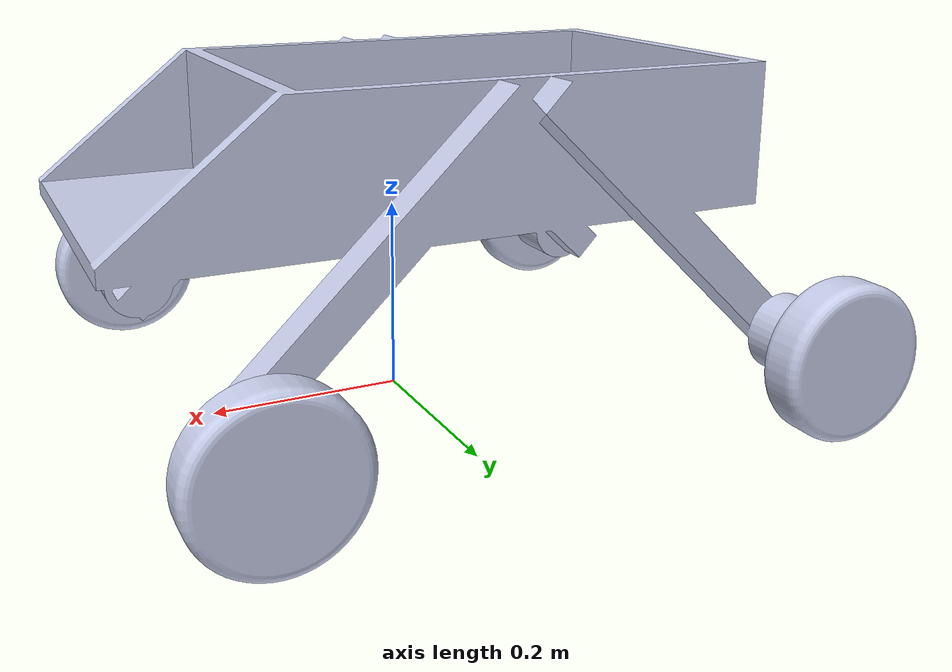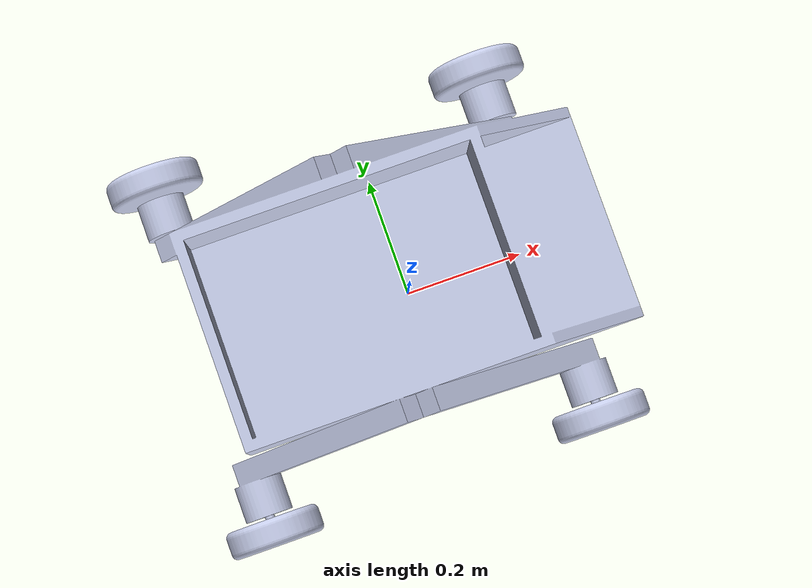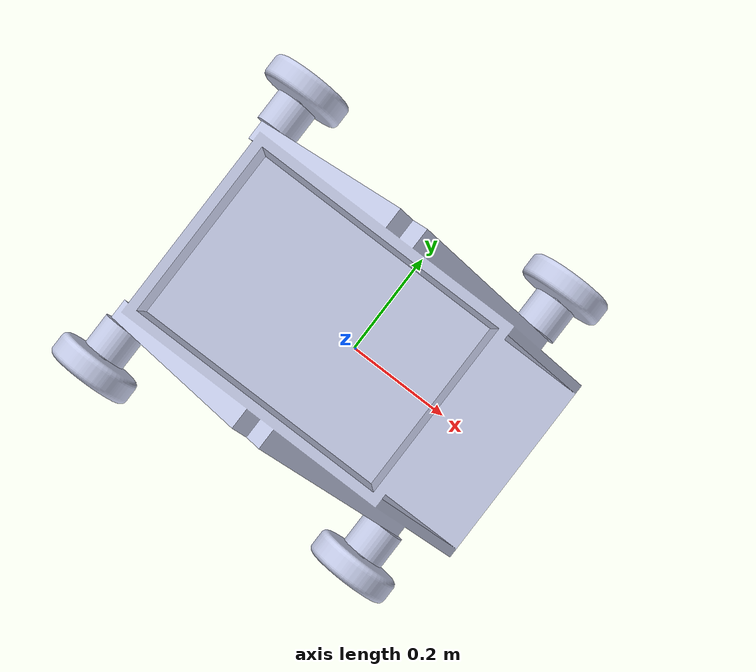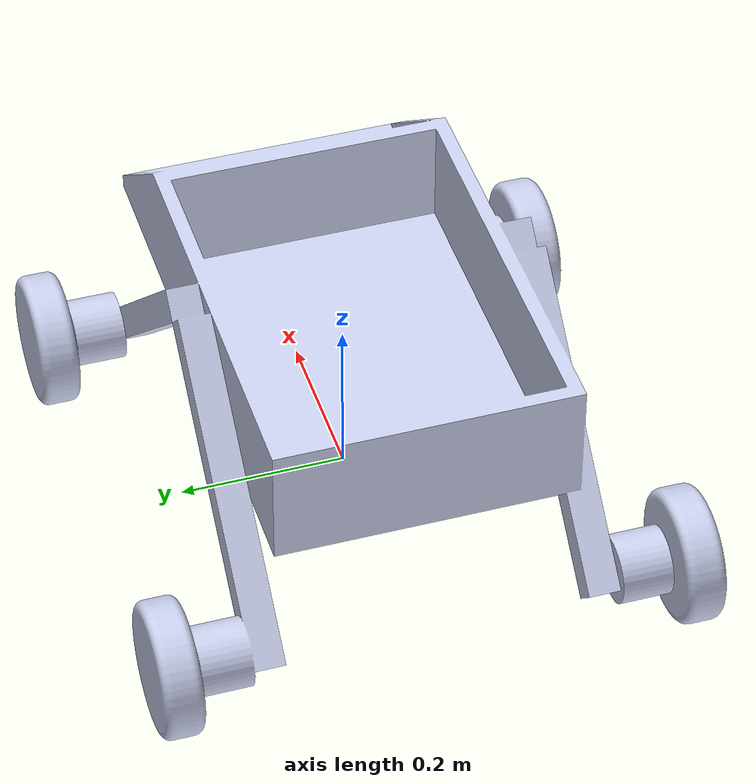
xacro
<?xml version="1.0" encoding="utf-8"?>
<robot name="rover_description" xmlns:xacro="http://wiki.ros.org/xacro">

  <xacro:arg name="is_ignition" default="true" />
  <xacro:arg name="use_sim_time" default="true" />

  <!-- Include the gazebo functionality -->
  <xacro:include filename="$(find rover_description)/urdf/rover_gazebo.xacro" />

  <link name="base_footprint"/>

  <joint name="base_joint" type="fixed">
    <origin xyz="0 0 0.20504" rpy="0 0 0"/>
    <parent link="base_footprint"/>
    <child link="base_link"/>
  </joint>

  <link
    name="base_link">
    <inertial>
      <origin
        xyz="-0.0355623533286835 -2.22044604925031E-16 0.0164166426332336"
        rpy="0 0 0" />
      <mass
        value="11.4311847158193" />
      <inertia
        ixx="0.15921041630405"
        ixy="-1.96548467063328E-17"
        ixz="0.00978928264057675"
        iyy="0.356433283334057"
        iyz="-2.51404195233332E-17"
        izz="0.453550833652058" />
    </inertial>
    <visual>
      <origin
        xyz="0 0 0"
        rpy="0 0 0" />
      <geometry>
        <mesh
          filename="package://rover_description/meshes/base_link.STL" />
      </geometry>
      <material
        name="">
        <color
          rgba="0.792156862745098 0.819607843137255 0.933333333333333 1" />
      </material>
    </visual>
    <collision>
      <origin
        xyz="0 0 0"
        rpy="0 0 0" />
      <geometry>
        <mesh
          filename="package://rover_description/meshes/base_link.STL" />
      </geometry>
    </collision>
  </link>
  <link
    name="link_FL">
    <inertial>
      <origin
        xyz="-2.2204E-16 -0.02376 1.1102E-16"
        rpy="0 0 0" />
      <mass
        value="0.90586" />
      <inertia
        ixx="0.001566"
        ixy="1.107E-20"
        ixz="2.7438E-19"
        iyy="0.00276"
        iyz="-4.4451E-20"
        izz="0.001566" />
    </inertial>
    <visual>
      <origin
        xyz="0 0 0"
        rpy="0 0 0" />
      <geometry>
        <mesh
          filename="package://rover_description/meshes/link_FL.STL" />
      </geometry>
      <material
        name="">
        <color
          rgba="0.79216 0.81961 0.93333 1" />
      </material>
    </visual>
    <collision>
      <origin
        xyz="0 0 0"
        rpy="0 0 0" />
      <geometry>
        <mesh
          filename="package://rover_description/meshes/link_FL.STL" />
      </geometry>
    </collision>
  </link>
  <joint
    name="joint_FL"
    type="continuous">
    <origin
      xyz="0.22765 0.32735 -0.12704"
      rpy="0 0 0" />
    <parent
      link="base_link" />
    <child
      link="link_FL" />
    <axis
      xyz="0 1 0" />
  </joint>
  <link
    name="link_FR">
    <inertial>
      <origin
        xyz="-2.2204E-16 0.02376 0"
        rpy="0 0 0" />
      <mass
        value="0.90586" />
      <inertia
        ixx="0.001566"
        ixy="2.6941E-20"
        ixz="4.3411E-21"
        iyy="0.00276"
        iyz="-4.0591E-20"
        izz="0.001566" />
    </inertial>
    <visual>
      <origin
        xyz="0 0 0"
        rpy="0 0 0" />
      <geometry>
        <mesh
          filename="package://rover_description/meshes/link_FR.STL" />
      </geometry>
      <material
        name="">
        <color
          rgba="0.79216 0.81961 0.93333 1" />
      </material>
    </visual>
    <collision>
      <origin
        xyz="0 0 0"
        rpy="0 0 0" />
      <geometry>
        <mesh
          filename="package://rover_description/meshes/link_FR.STL" />
      </geometry>
    </collision>
  </link>
  <joint
    name="joint_FR"
    type="continuous">
    <origin
      xyz="0.22765 -0.32735 -0.12704"
      rpy="0 0 0" />
    <parent
      link="base_link" />
    <child
      link="link_FR" />
    <axis
      xyz="0 1 0" />
  </joint>
  <link
    name="link_BL">
    <inertial>
      <origin
        xyz="0 -0.02376 1.1102E-16"
        rpy="0 0 0" />
      <mass
        value="0.90586" />
      <inertia
        ixx="0.001566"
        ixy="-6.5434E-20"
        ixz="-4.6682E-20"
        iyy="0.00276"
        iyz="-5.054E-21"
        izz="0.001566" />
    </inertial>
    <visual>
      <origin
        xyz="0 0 0"
        rpy="0 0 0" />
      <geometry>
        <mesh
          filename="package://rover_description/meshes/link_BL.STL" />
      </geometry>
      <material
        name="">
        <color
          rgba="0.79216 0.81961 0.93333 1" />
      </material>
    </visual>
    <collision>
      <origin
        xyz="0 0 0"
        rpy="0 0 0" />
      <geometry>
        <mesh
          filename="package://rover_description/meshes/link_BL.STL" />
      </geometry>
    </collision>
  </link>
  <joint
    name="joint_BL"
    type="continuous">
    <origin
      xyz="-0.34054 0.32735 -0.12704"
      rpy="0 0 0" />
    <parent
      link="base_link" />
    <child
      link="link_BL" />
    <axis
      xyz="0 1 0" />
  </joint>
  <link
    name="link_BR">
    <inertial>
      <origin
        xyz="-2.2204E-16 0.02376 0"
        rpy="0 0 0" />
      <mass
        value="0.90586" />
      <inertia
        ixx="0.001566"
        ixy="-8.0765E-20"
        ixz="-2.3203E-19"
        iyy="0.00276"
        iyz="4.4181E-20"
        izz="0.001566" />
    </inertial>
    <visual>
      <origin
        xyz="0 0 0"
        rpy="0 0 0" />
      <geometry>
        <mesh
          filename="package://rover_description/meshes/link_BR.STL" />
      </geometry>
      <material
        name="">
        <color
          rgba="0.79216 0.81961 0.93333 1" />
      </material>
    </visual>
    <collision>
      <origin
        xyz="0 0 0"
        rpy="0 0 0" />
      <geometry>
        <mesh
          filename="package://rover_description/meshes/link_BR.STL" />
      </geometry>
    </collision>
  </link>
  <joint
    name="joint_BR"
    type="continuous">
    <origin
      xyz="-0.34054 -0.32735 -0.12704"
      rpy="0 0 0" />
    <parent
      link="base_link" />
    <child
      link="link_BR" />
    <axis
      xyz="0 1 0" />
  </joint>
</robot>

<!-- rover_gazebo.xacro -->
<robot xmlns:xacro="http://ros.org/wiki/xacro">

  <!-- Base Link -->
  <gazebo reference="base_link">
    <material>Gazebo/Silver</material>
  </gazebo>

  <!-- Back Right Wheel -->
  <gazebo reference="link_BR">
    <mu1>1000000000000000.0</mu1>
    <mu2>1000000000000000.0</mu2>
    <kp>1000000000000.0</kp>
    <kd>10.0</kd>
    <minDepth>0.001</minDepth>
    <maxVel>0.1</maxVel>
    <fdir1>1 0 0</fdir1>
    <material>Gazebo/Black</material>
  </gazebo>

  <!-- Back Left Wheel -->
  <gazebo reference="link_BL">
    <mu1>1000000000000000.0</mu1>
    <mu2>1000000000000000.0</mu2>
    <kp>1000000000000.0</kp>
    <kd>10.0</kd>
    <minDepth>0.001</minDepth>
    <maxVel>0.1</maxVel>
    <fdir1>1 0 0</fdir1>
    <material>Gazebo/Black</material>
  </gazebo>

  <!-- Front Right Wheel -->
  <gazebo reference="link_FR">
    <mu1>1000000000000000.0</mu1>
    <mu2>1000000000000000.0</mu2>
    <kp>1000000000000.0</kp>
    <kd>10.0</kd>
    <minDepth>0.001</minDepth>
    <maxVel>0.1</maxVel>
    <fdir1>1 0 0</fdir1>
    <material>Gazebo/Black</material>
  </gazebo>

  <!-- Front Left Wheel -->
  <gazebo reference="link_FL">
    <mu1>1000000000000000.0</mu1>
    <mu2>1000000000000000.0</mu2>
    <kp>1000000000000.0</kp>
    <kd>10.0</kd>
    <minDepth>0.001</minDepth>
    <maxVel>0.1</maxVel>
    <fdir1>1 0 0</fdir1>
    <material>Gazebo/Black</material>
  </gazebo>

  <!-- Materials -->
  <material name="blue">
    <color rgba="0 0 1 1"/>
  </material>
  <material name="black">
    <color rgba="0 0 0 1"/>
  </material>
  <material name="silver">
    <color rgba="0.79 0.82 0.93 1"/>
  </material>
  <material name="dark_grey">
    <color rgba="0.3 0.3 0.3 1"/>
  </material>

</robot>
